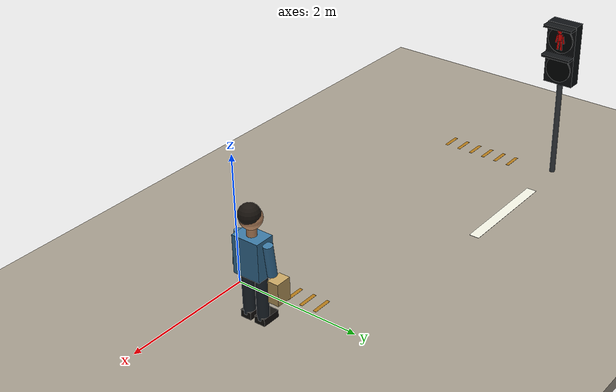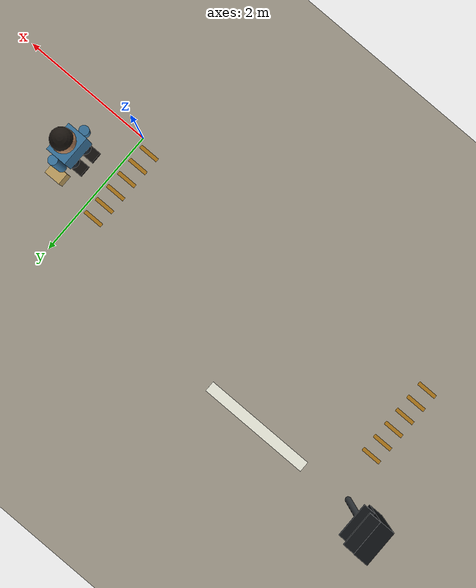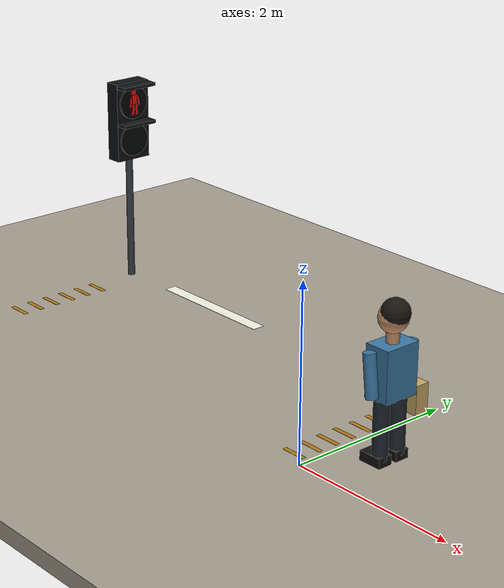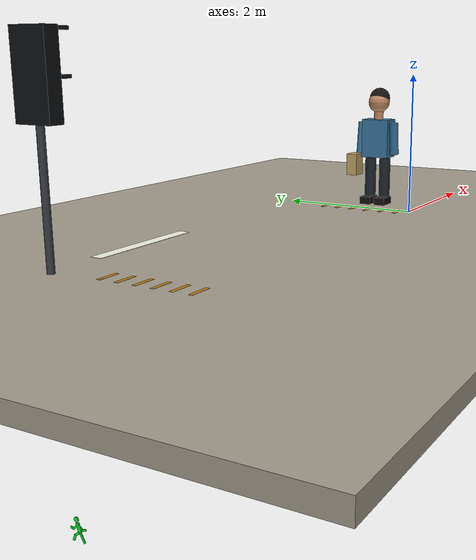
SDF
<sdf version="1.10">
 <world name="swan_market">
  <model name="ground">
   <static>true</static>
   <pose>15 0 -0.1 0 0 0</pose>
   <link name="body">
    <collision name="box_collision"><geometry><box><size>46 24 0.2</size></box></geometry></collision>
    <visual name="box_visual">
     <geometry><box><size>46 24 0.2</size></box></geometry>
     <material><ambient>0.64 0.61 0.55 1</ambient><diffuse>0.64 0.61 0.55 1</diffuse></material>
    </visual>
   </link>
  </model>
  <model name="road_stop_line_1">
   <static>true</static>
   <pose>-3.75 2 0.016 0 0 0</pose>
   <link name="body">
    <visual name="box_visual">
     <geometry><box><size>1.7 0.16 0.003</size></box></geometry>
     <material><ambient>0.95 0.95 0.89 1</ambient><diffuse>0.95 0.95 0.89 1</diffuse></material>
    </visual>
   </link>
  </model>
  <model name="tactile_mark_0_6">
   <static>true</static>
   <pose>-5.2 0.11 0.022 0 0 0</pose>
   <link name="body">
    <visual name="box_visual">
     <geometry><box><size>0.3 0.055 0.002</size></box></geometry>
     <material><ambient>0.69 0.47 0.1 1</ambient><diffuse>0.69 0.47 0.1 1</diffuse></material>
    </visual>
   </link>
  </model>
  <model name="tactile_mark_0_7">
   <static>true</static>
   <pose>-5.2 0.345 0.022 0 0 0</pose>
   <link name="body">
    <visual name="box_visual">
     <geometry><box><size>0.3 0.055 0.002</size></box></geometry>
     <material><ambient>0.69 0.47 0.1 1</ambient><diffuse>0.69 0.47 0.1 1</diffuse></material>
    </visual>
   </link>
  </model>
  <model name="tactile_mark_0_8">
   <static>true</static>
   <pose>-5.2 0.58 0.022 0 0 0</pose>
   <link name="body">
    <visual name="box_visual">
     <geometry><box><size>0.3 0.055 0.002</size></box></geometry>
     <material><ambient>0.69 0.47 0.1 1</ambient><diffuse>0.69 0.47 0.1 1</diffuse></material>
    </visual>
   </link>
  </model>
  <model name="tactile_mark_0_9">
   <static>true</static>
   <pose>-5.2 0.815 0.022 0 0 0</pose>
   <link name="body">
    <visual name="box_visual">
     <geometry><box><size>0.3 0.055 0.002</size></box></geometry>
     <material><ambient>0.69 0.47 0.1 1</ambient><diffuse>0.69 0.47 0.1 1</diffuse></material>
    </visual>
   </link>
  </model>
  <model name="tactile_mark_0_10">
   <static>true</static>
   <pose>-5.2 1.05 0.022 0 0 0</pose>
   <link name="body">
    <visual name="box_visual">
     <geometry><box><size>0.3 0.055 0.002</size></box></geometry>
     <material><ambient>0.69 0.47 0.1 1</ambient><diffuse>0.69 0.47 0.1 1</diffuse></material>
    </visual>
   </link>
  </model>
  <model name="tactile_mark_0_11">
   <static>true</static>
   <pose>-5.2 1.285 0.022 0 0 0</pose>
   <link name="body">
    <visual name="box_visual">
     <geometry><box><size>0.3 0.055 0.002</size></box></geometry>
     <material><ambient>0.69 0.47 0.1 1</ambient><diffuse>0.69 0.47 0.1 1</diffuse></material>
    </visual>
   </link>
  </model>
  <model name="tactile_mark_1_6">
   <static>true</static>
   <pose>-0.2 0.11 0.022 0 0 0</pose>
   <link name="body">
    <visual name="box_visual">
     <geometry><box><size>0.3 0.055 0.002</size></box></geometry>
     <material><ambient>0.69 0.47 0.1 1</ambient><diffuse>0.69 0.47 0.1 1</diffuse></material>
    </visual>
   </link>
  </model>
  <model name="tactile_mark_1_7">
   <static>true</static>
   <pose>-0.2 0.345 0.022 0 0 0</pose>
   <link name="body">
    <visual name="box_visual">
     <geometry><box><size>0.3 0.055 0.002</size></box></geometry>
     <material><ambient>0.69 0.47 0.1 1</ambient><diffuse>0.69 0.47 0.1 1</diffuse></material>
    </visual>
   </link>
  </model>
  <model name="tactile_mark_1_8">
   <static>true</static>
   <pose>-0.2 0.58 0.022 0 0 0</pose>
   <link name="body">
    <visual name="box_visual">
     <geometry><box><size>0.3 0.055 0.002</size></box></geometry>
     <material><ambient>0.69 0.47 0.1 1</ambient><diffuse>0.69 0.47 0.1 1</diffuse></material>
    </visual>
   </link>
  </model>
  <model name="tactile_mark_1_9">
   <static>true</static>
   <pose>-0.2 0.815 0.022 0 0 0</pose>
   <link name="body">
    <visual name="box_visual">
     <geometry><box><size>0.3 0.055 0.002</size></box></geometry>
     <material><ambient>0.69 0.47 0.1 1</ambient><diffuse>0.69 0.47 0.1 1</diffuse></material>
    </visual>
   </link>
  </model>
  <model name="tactile_mark_1_10">
   <static>true</static>
   <pose>-0.2 1.05 0.022 0 0 0</pose>
   <link name="body">
    <visual name="box_visual">
     <geometry><box><size>0.3 0.055 0.002</size></box></geometry>
     <material><ambient>0.69 0.47 0.1 1</ambient><diffuse>0.69 0.47 0.1 1</diffuse></material>
    </visual>
   </link>
  </model>
  <model name="tactile_mark_1_11">
   <static>true</static>
   <pose>-0.2 1.285 0.022 0 0 0</pose>
   <link name="body">
    <visual name="box_visual">
     <geometry><box><size>0.3 0.055 0.002</size></box></geometry>
     <material><ambient>0.69 0.47 0.1 1</ambient><diffuse>0.69 0.47 0.1 1</diffuse></material>
    </visual>
   </link>
  </model>
  <model name="ped_signal_west_housing">
   <static>true</static>
   <pose>-5.35 1.95 0 0 0 1.5708</pose>
   <link name="body">
    <collision name="pole_collision">
     <pose>0 0 1.025 0 0 0</pose>
     <geometry><cylinder><radius>0.045</radius><length>2.05</length></cylinder></geometry>
    </collision>
    <visual name="pole_visual">
     <pose>0 0 1.025 0 0 0</pose>
     <geometry><cylinder><radius>0.045</radius><length>2.05</length></cylinder></geometry>
     <material><ambient>0.23 0.25 0.27 1</ambient><diffuse>0.23 0.25 0.27 1</diffuse></material>
    </visual>
    <collision name="housing_collision">
     <pose>0 0 2.08 0 0 0</pose>
     <geometry><box><size>0.48 0.2 0.99</size></box></geometry>
    </collision>
    <visual name="housing_visual">
     <pose>0 0 2.08 0 0 0</pose>
     <geometry><box><size>0.48 0.2 0.99</size></box></geometry>
     <material><ambient>0.055 0.065 0.075 1</ambient><diffuse>0.055 0.065 0.075 1</diffuse></material>
    </visual>
    <visual name="red_lens_visual">
     <pose>0 -0.113 2.32 1.5708 0 0</pose>
     <geometry><cylinder><radius>0.205</radius><length>0.022</length></cylinder></geometry>
     <material><ambient>0.013 0.018 0.022 1</ambient><diffuse>0.013 0.018 0.022 1</diffuse></material>
    </visual>
    <visual name="red_hood_visual">
     <pose>0 -0.13 2.545 0 0 0</pose>
     <geometry><box><size>0.47 0.25 0.04</size></box></geometry>
     <material><ambient>0.07 0.08 0.09 1</ambient><diffuse>0.07 0.08 0.09 1</diffuse></material>
    </visual>
    <visual name="green_lens_visual">
     <pose>0 -0.113 1.84 1.5708 0 0</pose>
     <geometry><cylinder><radius>0.205</radius><length>0.022</length></cylinder></geometry>
     <material><ambient>0.013 0.018 0.022 1</ambient><diffuse>0.013 0.018 0.022 1</diffuse></material>
    </visual>
    <visual name="green_hood_visual">
     <pose>0 -0.13 2.065 0 0 0</pose>
     <geometry><box><size>0.47 0.25 0.04</size></box></geometry>
     <material><ambient>0.07 0.08 0.09 1</ambient><diffuse>0.07 0.08 0.09 1</diffuse></material>
    </visual>
   </link>
  </model>
  <model name="ped_signal_west_red">
   <static>true</static>
   <pose>-5.35 1.95 0 0 0 1.5708</pose>
   <link name="body">
    <visual name="head_visual">
     <pose>-0.012 -0.132 2.457 1.5708 0 0</pose>
     <geometry><cylinder><radius>0.035</radius><length>0.01</length></cylinder></geometry>
     <material>
      <ambient>1 0.025 0.015 1</ambient>
      <diffuse>1 0.025 0.015 1</diffuse>
      <emissive>1 0.025 0.015 1</emissive>
     </material>
     <cast_shadows>false</cast_shadows>
    </visual>
    <visual name="stroke_0_visual">
     <pose>0 -0.132 2.36 0 3.1416 0</pose>
     <geometry><box><size>0.064 0.01 0.122</size></box></geometry>
     <material>
      <ambient>1 0.025 0.015 1</ambient>
      <diffuse>1 0.025 0.015 1</diffuse>
      <emissive>1 0.025 0.015 1</emissive>
     </material>
     <cast_shadows>false</cast_shadows>
    </visual>
    <visual name="stroke_1_visual">
     <pose>-0.056 -0.132 2.338 0 -2.9551 0</pose>
     <geometry><box><size>0.026 0.01 0.11987</size></box></geometry>
     <material>
      <ambient>1 0.025 0.015 1</ambient>
      <diffuse>1 0.025 0.015 1</diffuse>
      <emissive>1 0.025 0.015 1</emissive>
     </material>
     <cast_shadows>false</cast_shadows>
    </visual>
    <visual name="stroke_2_visual">
     <pose>0.056 -0.132 2.338 0 2.9551 0</pose>
     <geometry><box><size>0.026 0.01 0.11987</size></box></geometry>
     <material>
      <ambient>1 0.025 0.015 1</ambient>
      <diffuse>1 0.025 0.015 1</diffuse>
      <emissive>1 0.025 0.015 1</emissive>
     </material>
     <cast_shadows>false</cast_shadows>
    </visual>
    <visual name="stroke_3_visual">
     <pose>-0.0255 -0.132 2.2425 0 -3.075 0</pose>
     <geometry><box><size>0.032 0.01 0.1473</size></box></geometry>
     <material>
      <ambient>1 0.025 0.015 1</ambient>
      <diffuse>1 0.025 0.015 1</diffuse>
      <emissive>1 0.025 0.015 1</emissive>
     </material>
     <cast_shadows>false</cast_shadows>
    </visual>
    <visual name="stroke_4_visual">
     <pose>0.0255 -0.132 2.2425 0 3.075 0</pose>
     <geometry><box><size>0.032 0.01 0.1473</size></box></geometry>
     <material>
      <ambient>1 0.025 0.015 1</ambient>
      <diffuse>1 0.025 0.015 1</diffuse>
      <emissive>1 0.025 0.015 1</emissive>
     </material>
     <cast_shadows>false</cast_shadows>
    </visual>
   </link>
  </model>
  <model name="ped_signal_west_green">
   <static>true</static>
   <pose>-5.35 1.95 -5 0 0 1.5708</pose>
   <link name="body">
    <visual name="head_visual">
     <pose>0.025 -0.132 1.977 1.5708 0 0</pose>
     <geometry><cylinder><radius>0.035</radius><length>0.01</length></cylinder></geometry>
     <material>
      <ambient>0.025 1 0.18 1</ambient>
      <diffuse>0.025 1 0.18 1</diffuse>
      <emissive>0.025 1 0.18 1</emissive>
     </material>
     <cast_shadows>false</cast_shadows>
    </visual>
    <visual name="stroke_0_visual">
     <pose>-0.004 -0.132 1.876 0 -2.8633 0</pose>
     <geometry><box><size>0.054 0.01 0.12848</size></box></geometry>
     <material>
      <ambient>0.025 1 0.18 1</ambient>
      <diffuse>0.025 1 0.18 1</diffuse>
      <emissive>0.025 1 0.18 1</emissive>
     </material>
     <cast_shadows>false</cast_shadows>
    </visual>
    <visual name="stroke_1_visual">
     <pose>-0.032 -0.132 1.883 0 -2.234 0</pose>
     <geometry><box><size>0.026 0.01 0.093216</size></box></geometry>
     <material>
      <ambient>0.025 1 0.18 1</ambient>
      <diffuse>0.025 1 0.18 1</diffuse>
      <emissive>0.025 1 0.18 1</emissive>
     </material>
     <cast_shadows>false</cast_shadows>
    </visual>
    <visual name="stroke_2_visual">
     <pose>-0.088 -0.132 1.8665 0 -1.2304 0</pose>
     <geometry><box><size>0.026 0.01 0.062922</size></box></geometry>
     <material>
      <ambient>0.025 1 0.18 1</ambient>
      <diffuse>0.025 1 0.18 1</diffuse>
      <emissive>0.025 1 0.18 1</emissive>
     </material>
     <cast_shadows>false</cast_shadows>
    </visual>
    <visual name="stroke_3_visual">
     <pose>0.0475 -0.132 1.872 0 2.3652 0</pose>
     <geometry><box><size>0.026 0.01 0.090492</size></box></geometry>
     <material>
      <ambient>0.025 1 0.18 1</ambient>
      <diffuse>0.025 1 0.18 1</diffuse>
      <emissive>0.025 1 0.18 1</emissive>
     </material>
     <cast_shadows>false</cast_shadows>
    </visual>
    <visual name="stroke_4_visual">
     <pose>0.097 -0.132 1.8485 0 1.369 0</pose>
     <geometry><box><size>0.026 0.01 0.056911</size></box></geometry>
     <material>
      <ambient>0.025 1 0.18 1</ambient>
      <diffuse>0.025 1 0.18 1</diffuse>
      <emissive>0.025 1 0.18 1</emissive>
     </material>
     <cast_shadows>false</cast_shadows>
    </visual>
    <visual name="stroke_5_visual">
     <pose>-0.052 -0.132 1.76 0 -2.6651 0</pose>
     <geometry><box><size>0.031 0.01 0.15154</size></box></geometry>
     <material>
      <ambient>0.025 1 0.18 1</ambient>
      <diffuse>0.025 1 0.18 1</diffuse>
      <emissive>0.025 1 0.18 1</emissive>
     </material>
     <cast_shadows>false</cast_shadows>
    </visual>
    <visual name="stroke_6_visual">
     <pose>0.0195 -0.132 1.7905 0 2.1749 0</pose>
     <geometry><box><size>0.031 0.01 0.098267</size></box></geometry>
     <material>
      <ambient>0.025 1 0.18 1</ambient>
      <diffuse>0.025 1 0.18 1</diffuse>
      <emissive>0.025 1 0.18 1</emissive>
     </material>
     <cast_shadows>false</cast_shadows>
    </visual>
    <visual name="stroke_7_visual">
     <pose>0.0705 -0.132 1.7295 0 2.74 0</pose>
     <geometry><box><size>0.031 0.01 0.09131</size></box></geometry>
     <material>
      <ambient>0.025 1 0.18 1</ambient>
      <diffuse>0.025 1 0.18 1</diffuse>
      <emissive>0.025 1 0.18 1</emissive>
     </material>
     <cast_shadows>false</cast_shadows>
    </visual>
   </link>
  </model>
  <model name="crossing_pedestrian_2">
   <static>true</static>
   <pose>0.5 0.75 0 0 0 3.1416</pose>
   <link name="body">
    <collision name="leg_-1_collision">
     <pose>0 -0.12 0.4 0 0 0</pose>
     <geometry><cylinder><radius>0.085</radius><length>0.68</length></cylinder></geometry>
    </collision>
    <visual name="leg_-1_visual">
     <pose>0 -0.12 0.4 0 0 0</pose>
     <geometry><cylinder><radius>0.085</radius><length>0.68</length></cylinder></geometry>
     <material><ambient>0.12 0.15 0.18 1</ambient><diffuse>0.12 0.15 0.18 1</diffuse></material>
    </visual>
    <collision name="shoe_-1_collision">
     <pose>0.06 -0.12 0.055 0 0 0</pose>
     <geometry><box><size>0.28 0.17 0.11</size></box></geometry>
    </collision>
    <visual name="shoe_-1_visual">
     <pose>0.06 -0.12 0.055 0 0 0</pose>
     <geometry><box><size>0.28 0.17 0.11</size></box></geometry>
     <material><ambient>0.08 0.07 0.06 1</ambient><diffuse>0.08 0.07 0.06 1</diffuse></material>
    </visual>
    <collision name="arm_-1_collision">
     <pose>0.02 -0.27 1.02 0 -0.12 0</pose>
     <geometry><cylinder><radius>0.068</radius><length>0.48</length></cylinder></geometry>
    </collision>
    <visual name="arm_-1_visual">
     <pose>0.02 -0.27 1.02 0 -0.12 0</pose>
     <geometry><cylinder><radius>0.068</radius><length>0.48</length></cylinder></geometry>
     <material><ambient>0.23 0.47 0.64 1</ambient><diffuse>0.23 0.47 0.64 1</diffuse></material>
    </visual>
    <collision name="leg_1_collision">
     <pose>0 0.12 0.4 0 0 0</pose>
     <geometry><cylinder><radius>0.085</radius><length>0.68</length></cylinder></geometry>
    </collision>
    <visual name="leg_1_visual">
     <pose>0 0.12 0.4 0 0 0</pose>
     <geometry><cylinder><radius>0.085</radius><length>0.68</length></cylinder></geometry>
     <material><ambient>0.12 0.15 0.18 1</ambient><diffuse>0.12 0.15 0.18 1</diffuse></material>
    </visual>
    <collision name="shoe_1_collision">
     <pose>0.06 0.12 0.055 0 0 0</pose>
     <geometry><box><size>0.28 0.17 0.11</size></box></geometry>
    </collision>
    <visual name="shoe_1_visual">
     <pose>0.06 0.12 0.055 0 0 0</pose>
     <geometry><box><size>0.28 0.17 0.11</size></box></geometry>
     <material><ambient>0.08 0.07 0.06 1</ambient><diffuse>0.08 0.07 0.06 1</diffuse></material>
    </visual>
    <collision name="arm_1_collision">
     <pose>0.02 0.27 1.02 0 0.12 0</pose>
     <geometry><cylinder><radius>0.068</radius><length>0.48</length></cylinder></geometry>
    </collision>
    <visual name="arm_1_visual">
     <pose>0.02 0.27 1.02 0 0.12 0</pose>
     <geometry><cylinder><radius>0.068</radius><length>0.48</length></cylinder></geometry>
     <material><ambient>0.23 0.47 0.64 1</ambient><diffuse>0.23 0.47 0.64 1</diffuse></material>
    </visual>
    <collision name="torso_collision">
     <pose>0 0 1.02 0 0 0</pose>
     <geometry><box><size>0.3 0.43 0.58</size></box></geometry>
    </collision>
    <visual name="torso_visual">
     <pose>0 0 1.02 0 0 0</pose>
     <geometry><box><size>0.3 0.43 0.58</size></box></geometry>
     <material><ambient>0.23 0.47 0.64 1</ambient><diffuse>0.23 0.47 0.64 1</diffuse></material>
    </visual>
    <visual name="neck_visual">
     <pose>0 0 1.37 0 0 0</pose>
     <geometry><cylinder><radius>0.07</radius><length>0.13</length></cylinder></geometry>
     <material><ambient>0.77 0.56 0.4 1</ambient><diffuse>0.77 0.56 0.4 1</diffuse></material>
    </visual>
    <collision name="head_collision">
     <pose>0 0 1.57 0 0 0</pose>
     <geometry><sphere><radius>0.16</radius></sphere></geometry>
    </collision>
    <visual name="head_visual">
     <pose>0 0 1.57 0 0 0</pose>
     <geometry><sphere><radius>0.16</radius></sphere></geometry>
     <material><ambient>0.77 0.56 0.4 1</ambient><diffuse>0.77 0.56 0.4 1</diffuse></material>
    </visual>
    <visual name="hair_visual">
     <pose>-0.025 0 1.63 0 0 0</pose>
     <geometry><sphere><radius>0.155</radius></sphere></geometry>
     <material><ambient>0.1 0.08 0.06 1</ambient><diffuse>0.1 0.08 0.06 1</diffuse></material>
    </visual>
    <collision name="shopping_bag_collision">
     <pose>0.04 -0.38 0.6 0 0 0</pose>
     <geometry><box><size>0.24 0.17 0.33</size></box></geometry>
    </collision>
    <visual name="shopping_bag_visual">
     <pose>0.04 -0.38 0.6 0 0 0</pose>
     <geometry><box><size>0.24 0.17 0.33</size></box></geometry>
     <material><ambient>0.78 0.65 0.39 1</ambient><diffuse>0.78 0.65 0.39 1</diffuse></material>
    </visual>
   </link>
  </model>
 </world>
</sdf>
